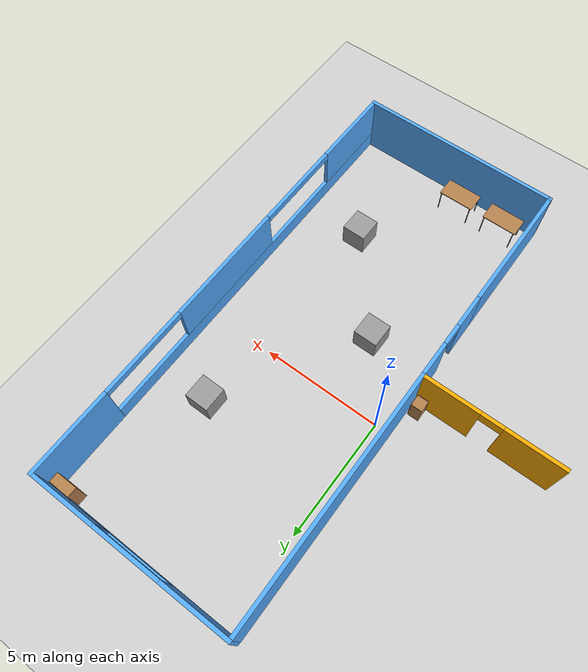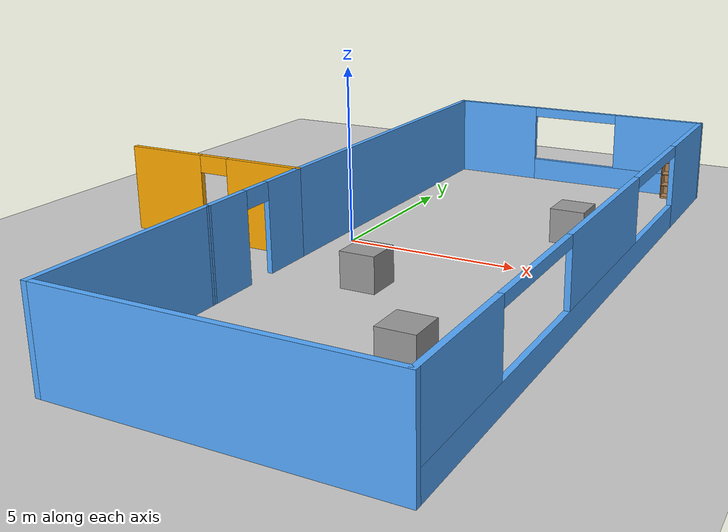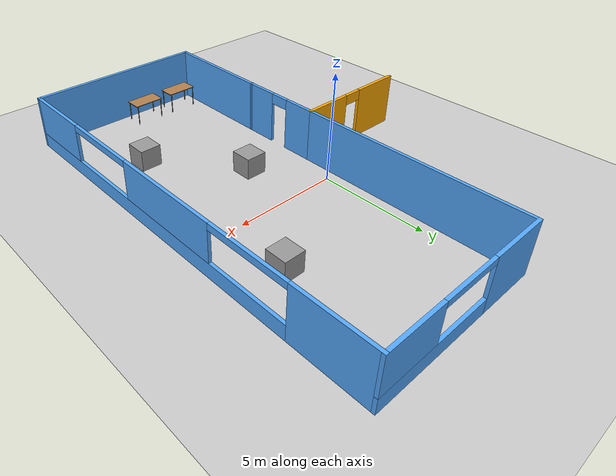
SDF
<sdf version="1.6">
 <world name="default">
  <model name="ground_plane">
   <static>1</static>
   <link name="link">
    <collision name="collision">
     <geometry><plane><normal>0 0 1</normal><size>100 100</size></plane></geometry>
     <surface><friction><ode><mu>100</mu><mu2>50</mu2></ode></friction></surface>
    </collision>
    <visual name="visual">
     <cast_shadows>0</cast_shadows>
     <geometry><plane><normal>0 0 1</normal><size>100 100</size></plane></geometry>
     <material>
      <script><uri>file://media/materials/scripts/gazebo.material</uri><name>Gazebo/Grey</name></script>
     </material>
    </visual>
   </link>
  </model>
  <model name="Building">
   <link name="Wall_10">
    <pose>2.99997 -7.175 0 0 -0 1.5708</pose>
    <visual name="Wall_10_Visual">
     <pose>0 0 1.25 0 -0 0</pose>
     <geometry><box><size>5.5 0.15 2.5</size></box></geometry>
     <material>
      <script><uri>file://media/materials/scripts/gazebo.material</uri><name>Gazebo/Grey</name></script>
      <ambient>0.333333 0.666667 1 1</ambient>
      <diffuse>0.7 0.7 0.7 1</diffuse>
      <specular>0.01 0.01 0.01 1</specular>
      <emissive>0 0 0 1</emissive>
     </material>
     <meta><layer>0</layer></meta>
    </visual>
    <collision name="Wall_10_Collision">
     <pose>0 0 1.25 0 -0 0</pose>
     <geometry><box><size>5.5 0.15 2.5</size></box></geometry>
     <surface>
      <friction>
       <ode><mu>1</mu><mu2>1</mu2><fdir1>0 0 0</fdir1><slip1>0</slip1><slip2>0</slip2></ode>
       <torsional>
        <coefficient>1</coefficient>
        <patch_radius>0</patch_radius>
        <surface_radius>0</surface_radius>
        <use_patch_radius>1</use_patch_radius>
        <ode><slip>0</slip></ode>
       </torsional>
      </friction>
      <bounce><restitution_coefficient>0</restitution_coefficient><threshold>1e+06</threshold></bounce>
      <contact>
       <collide_without_contact>0</collide_without_contact>
       <collide_without_contact_bitmask>1</collide_without_contact_bitmask>
       <collide_bitmask>1</collide_bitmask>
       <ode>
        <soft_cfm>0</soft_cfm>
        <soft_erp>0.2</soft_erp>
        <kp>1e+13</kp>
        <kd>1</kd>
        <max_vel>0.01</max_vel>
        <min_depth>0</min_depth>
       </ode>
       <bullet>
        <split_impulse>1</split_impulse>
        <split_impulse_penetration_threshold>-0.01</split_impulse_penetration_threshold>
        <soft_cfm>0</soft_cfm>
        <soft_erp>0.2</soft_erp>
        <kp>1e+13</kp>
        <kd>1</kd>
       </bullet>
      </contact>
     </surface>
    </collision>
   </link>
   <link name="Wall_53">
    <pose>0.190752 -0.639237 0 0 -0 0</pose>
    <visual name="Wall_53_Visual_0">
     <pose>-1.66349 0 1.25 0 -0 0</pose>
     <geometry><box><size>2.42302 0.15 2.5</size></box></geometry>
     <material>
      <script><uri>file://media/materials/scripts/gazebo.material</uri><name>Gazebo/Grey</name></script>
      <ambient>1 0.666667 0 1</ambient>
      <diffuse>0.7 0.7 0.7 1</diffuse>
      <specular>0.01 0.01 0.01 1</specular>
      <emissive>0 0 0 1</emissive>
     </material>
     <meta><layer>0</layer></meta>
    </visual>
    <visual name="Wall_53_Visual_1">
     <pose>1.66151 0 1.25 0 -0 0</pose>
     <geometry><box><size>2.42698 0.15 2.5</size></box></geometry>
     <material>
      <script><uri>file://media/materials/scripts/gazebo.material</uri><name>Gazebo/Grey</name></script>
      <ambient>1 0.666667 0 1</ambient>
      <diffuse>0.7 0.7 0.7 1</diffuse>
      <specular>0.01 0.01 0.01 1</specular>
      <emissive>0 0 0 1</emissive>
     </material>
     <meta><layer>0</layer></meta>
    </visual>
    <visual name="Wall_53_Visual_2">
     <pose>-0.001979 0 2.25 0 -0 0</pose>
     <geometry><box><size>0.9 0.15 0.5</size></box></geometry>
     <material>
      <script><uri>file://media/materials/scripts/gazebo.material</uri><name>Gazebo/Grey</name></script>
      <ambient>1 0.666667 0 1</ambient>
      <diffuse>0.7 0.7 0.7 1</diffuse>
      <specular>0.01 0.01 0.01 1</specular>
      <emissive>0 0 0 1</emissive>
     </material>
     <meta><layer>0</layer></meta>
    </visual>
    <collision name="Wall_53_Collision_0">
     <pose>-1.66349 0 1.25 0 -0 0</pose>
     <geometry><box><size>2.42302 0.15 2.5</size></box></geometry>
     <surface>
      <friction>
       <ode><mu>1</mu><mu2>1</mu2><fdir1>0 0 0</fdir1><slip1>0</slip1><slip2>0</slip2></ode>
       <torsional>
        <coefficient>1</coefficient>
        <patch_radius>0</patch_radius>
        <surface_radius>0</surface_radius>
        <use_patch_radius>1</use_patch_radius>
        <ode><slip>0</slip></ode>
       </torsional>
      </friction>
      <bounce><restitution_coefficient>0</restitution_coefficient><threshold>1e+06</threshold></bounce>
      <contact>
       <collide_without_contact>0</collide_without_contact>
       <collide_without_contact_bitmask>1</collide_without_contact_bitmask>
       <collide_bitmask>1</collide_bitmask>
       <ode>
        <soft_cfm>0</soft_cfm>
        <soft_erp>0.2</soft_erp>
        <kp>1e+13</kp>
        <kd>1</kd>
        <max_vel>0.01</max_vel>
        <min_depth>0</min_depth>
       </ode>
       <bullet>
        <split_impulse>1</split_impulse>
        <split_impulse_penetration_threshold>-0.01</split_impulse_penetration_threshold>
        <soft_cfm>0</soft_cfm>
        <soft_erp>0.2</soft_erp>
        <kp>1e+13</kp>
        <kd>1</kd>
       </bullet>
      </contact>
     </surface>
    </collision>
    <collision name="Wall_53_Collision_1">
     <pose>1.66151 0 1.25 0 -0 0</pose>
     <geometry><box><size>2.42698 0.15 2.5</size></box></geometry>
     <surface>
      <friction>
       <ode><mu>1</mu><mu2>1</mu2><fdir1>0 0 0</fdir1><slip1>0</slip1><slip2>0</slip2></ode>
       <torsional>
        <coefficient>1</coefficient>
        <patch_radius>0</patch_radius>
        <surface_radius>0</surface_radius>
        <use_patch_radius>1</use_patch_radius>
        <ode><slip>0</slip></ode>
       </torsional>
      </friction>
      <bounce><restitution_coefficient>0</restitution_coefficient><threshold>1e+06</threshold></bounce>
      <contact>
       <collide_without_contact>0</collide_without_contact>
       <collide_without_contact_bitmask>1</collide_without_contact_bitmask>
       <collide_bitmask>1</collide_bitmask>
       <ode>
        <soft_cfm>0</soft_cfm>
        <soft_erp>0.2</soft_erp>
        <kp>1e+13</kp>
        <kd>1</kd>
        <max_vel>0.01</max_vel>
        <min_depth>0</min_depth>
       </ode>
       <bullet>
        <split_impulse>1</split_impulse>
        <split_impulse_penetration_threshold>-0.01</split_impulse_penetration_threshold>
        <soft_cfm>0</soft_cfm>
        <soft_erp>0.2</soft_erp>
        <kp>1e+13</kp>
        <kd>1</kd>
       </bullet>
      </contact>
     </surface>
    </collision>
    <collision name="Wall_53_Collision_2">
     <pose>-0.001979 0 2.25 0 -0 0</pose>
     <geometry><box><size>0.9 0.15 0.5</size></box></geometry>
     <surface>
      <friction>
       <ode><mu>1</mu><mu2>1</mu2><fdir1>0 0 0</fdir1><slip1>0</slip1><slip2>0</slip2></ode>
       <torsional>
        <coefficient>1</coefficient>
        <patch_radius>0</patch_radius>
        <surface_radius>0</surface_radius>
        <use_patch_radius>1</use_patch_radius>
        <ode><slip>0</slip></ode>
       </torsional>
      </friction>
      <bounce><restitution_coefficient>0</restitution_coefficient><threshold>1e+06</threshold></bounce>
      <contact>
       <collide_without_contact>0</collide_without_contact>
       <collide_without_contact_bitmask>1</collide_without_contact_bitmask>
       <collide_bitmask>1</collide_bitmask>
       <ode>
        <soft_cfm>0</soft_cfm>
        <soft_erp>0.2</soft_erp>
        <kp>1e+13</kp>
        <kd>1</kd>
        <max_vel>0.01</max_vel>
        <min_depth>0</min_depth>
       </ode>
       <bullet>
        <split_impulse>1</split_impulse>
        <split_impulse_penetration_threshold>-0.01</split_impulse_penetration_threshold>
        <soft_cfm>0</soft_cfm>
        <soft_erp>0.2</soft_erp>
        <kp>1e+13</kp>
        <kd>1</kd>
       </bullet>
      </contact>
     </surface>
    </collision>
   </link>
   <link name="Wall_65">
    <pose>7.175 9.84997 0 0 0 -7e-06</pose>
    <visual name="Wall_65_Visual_0">
     <pose>-2.82562 0 1.25 0 -0 0</pose>
     <geometry><box><size>2.84883 0.15 2.5</size></box></geometry>
     <material>
      <script><uri>file://media/materials/scripts/gazebo.material</uri><name>Gazebo/Grey</name></script>
      <ambient>0.333333 0.666667 1 1</ambient>
      <diffuse>0.7 0.7 0.7 1</diffuse>
      <specular>0.01 0.01 0.01 1</specular>
      <emissive>0 0 0 1</emissive>
     </material>
     <meta><layer>0</layer></meta>
    </visual>
    <visual name="Wall_65_Visual_1">
     <pose>1.42442 0 0.35 0 -0 0</pose>
     <geometry><box><size>5.65124 0.15 0.7</size></box></geometry>
     <material>
      <script><uri>file://media/materials/scripts/gazebo.material</uri><name>Gazebo/Grey</name></script>
      <ambient>0.333333 0.666667 1 1</ambient>
      <diffuse>0.7 0.7 0.7 1</diffuse>
      <specular>0.01 0.01 0.01 1</specular>
      <emissive>0 0 0 1</emissive>
     </material>
     <meta><layer>0</layer></meta>
    </visual>
    <visual name="Wall_65_Visual_2">
     <pose>2.82442 0 1.6 0 -0 0</pose>
     <geometry><box><size>2.85124 0.15 1.8</size></box></geometry>
     <material>
      <script><uri>file://media/materials/scripts/gazebo.material</uri><name>Gazebo/Grey</name></script>
      <ambient>0.333333 0.666667 1 1</ambient>
      <diffuse>0.7 0.7 0.7 1</diffuse>
      <specular>0.01 0.01 0.01 1</specular>
      <emissive>0 0 0 1</emissive>
     </material>
     <meta><layer>0</layer></meta>
    </visual>
    <visual name="Wall_65_Visual_3">
     <pose>-0.001203 0 2.35 0 -0 0</pose>
     <geometry><box><size>2.8 0.15 0.3</size></box></geometry>
     <material>
      <script><uri>file://media/materials/scripts/gazebo.material</uri><name>Gazebo/Grey</name></script>
      <ambient>0.333333 0.666667 1 1</ambient>
      <diffuse>0.7 0.7 0.7 1</diffuse>
      <specular>0.01 0.01 0.01 1</specular>
      <emissive>0 0 0 1</emissive>
     </material>
     <meta><layer>0</layer></meta>
    </visual>
    <collision name="Wall_65_Collision_0">
     <pose>-2.82562 0 1.25 0 -0 0</pose>
     <geometry><box><size>2.84883 0.15 2.5</size></box></geometry>
     <surface>
      <friction>
       <ode><mu>1</mu><mu2>1</mu2><fdir1>0 0 0</fdir1><slip1>0</slip1><slip2>0</slip2></ode>
       <torsional>
        <coefficient>1</coefficient>
        <patch_radius>0</patch_radius>
        <surface_radius>0</surface_radius>
        <use_patch_radius>1</use_patch_radius>
        <ode><slip>0</slip></ode>
       </torsional>
      </friction>
      <bounce><restitution_coefficient>0</restitution_coefficient><threshold>1e+06</threshold></bounce>
      <contact>
       <collide_without_contact>0</collide_without_contact>
       <collide_without_contact_bitmask>1</collide_without_contact_bitmask>
       <collide_bitmask>1</collide_bitmask>
       <ode>
        <soft_cfm>0</soft_cfm>
        <soft_erp>0.2</soft_erp>
        <kp>1e+13</kp>
        <kd>1</kd>
        <max_vel>0.01</max_vel>
        <min_depth>0</min_depth>
       </ode>
       <bullet>
        <split_impulse>1</split_impulse>
        <split_impulse_penetration_threshold>-0.01</split_impulse_penetration_threshold>
        <soft_cfm>0</soft_cfm>
        <soft_erp>0.2</soft_erp>
        <kp>1e+13</kp>
        <kd>1</kd>
       </bullet>
      </contact>
     </surface>
    </collision>
    <collision name="Wall_65_Collision_1">
     <pose>1.42442 0 0.35 0 -0 0</pose>
     <geometry><box><size>5.65124 0.15 0.7</size></box></geometry>
     <surface>
      <friction>
       <ode><mu>1</mu><mu2>1</mu2><fdir1>0 0 0</fdir1><slip1>0</slip1><slip2>0</slip2></ode>
       <torsional>
        <coefficient>1</coefficient>
        <patch_radius>0</patch_radius>
        <surface_radius>0</surface_radius>
        <use_patch_radius>1</use_patch_radius>
        <ode><slip>0</slip></ode>
       </torsional>
      </friction>
      <bounce><restitution_coefficient>0</restitution_coefficient><threshold>1e+06</threshold></bounce>
      <contact>
       <collide_without_contact>0</collide_without_contact>
       <collide_without_contact_bitmask>1</collide_without_contact_bitmask>
       <collide_bitmask>1</collide_bitmask>
       <ode>
        <soft_cfm>0</soft_cfm>
        <soft_erp>0.2</soft_erp>
        <kp>1e+13</kp>
        <kd>1</kd>
        <max_vel>0.01</max_vel>
        <min_depth>0</min_depth>
       </ode>
       <bullet>
        <split_impulse>1</split_impulse>
        <split_impulse_penetration_threshold>-0.01</split_impulse_penetration_threshold>
        <soft_cfm>0</soft_cfm>
        <soft_erp>0.2</soft_erp>
        <kp>1e+13</kp>
        <kd>1</kd>
       </bullet>
      </contact>
     </surface>
    </collision>
    <collision name="Wall_65_Collision_2">
     <pose>2.82442 0 1.6 0 -0 0</pose>
     <geometry><box><size>2.85124 0.15 1.8</size></box></geometry>
     <surface>
      <friction>
       <ode><mu>1</mu><mu2>1</mu2><fdir1>0 0 0</fdir1><slip1>0</slip1><slip2>0</slip2></ode>
       <torsional>
        <coefficient>1</coefficient>
        <patch_radius>0</patch_radius>
        <surface_radius>0</surface_radius>
        <use_patch_radius>1</use_patch_radius>
        <ode><slip>0</slip></ode>
       </torsional>
      </friction>
      <bounce><restitution_coefficient>0</restitution_coefficient><threshold>1e+06</threshold></bounce>
      <contact>
       <collide_without_contact>0</collide_without_contact>
       <collide_without_contact_bitmask>1</collide_without_contact_bitmask>
       <collide_bitmask>1</collide_bitmask>
       <ode>
        <soft_cfm>0</soft_cfm>
        <soft_erp>0.2</soft_erp>
        <kp>1e+13</kp>
        <kd>1</kd>
        <max_vel>0.01</max_vel>
        <min_depth>0</min_depth>
       </ode>
       <bullet>
        <split_impulse>1</split_impulse>
        <split_impulse_penetration_threshold>-0.01</split_impulse_penetration_threshold>
        <soft_cfm>0</soft_cfm>
        <soft_erp>0.2</soft_erp>
        <kp>1e+13</kp>
        <kd>1</kd>
       </bullet>
      </contact>
     </surface>
    </collision>
    <collision name="Wall_65_Collision_3">
     <pose>-0.001203 0 2.35 0 -0 0</pose>
     <geometry><box><size>2.8 0.15 0.3</size></box></geometry>
     <surface>
      <friction>
       <ode><mu>1</mu><mu2>1</mu2><fdir1>0 0 0</fdir1><slip1>0</slip1><slip2>0</slip2></ode>
       <torsional>
        <coefficient>1</coefficient>
        <patch_radius>0</patch_radius>
        <surface_radius>0</surface_radius>
        <use_patch_radius>1</use_patch_radius>
        <ode><slip>0</slip></ode>
       </torsional>
      </friction>
      <bounce><restitution_coefficient>0</restitution_coefficient><threshold>1e+06</threshold></bounce>
      <contact>
       <collide_without_contact>0</collide_without_contact>
       <collide_without_contact_bitmask>1</collide_without_contact_bitmask>
       <collide_bitmask>1</collide_bitmask>
       <ode>
        <soft_cfm>0</soft_cfm>
        <soft_erp>0.2</soft_erp>
        <kp>1e+13</kp>
        <kd>1</kd>
        <max_vel>0.01</max_vel>
        <min_depth>0</min_depth>
       </ode>
       <bullet>
        <split_impulse>1</split_impulse>
        <split_impulse_penetration_threshold>-0.01</split_impulse_penetration_threshold>
        <soft_cfm>0</soft_cfm>
        <soft_erp>0.2</soft_erp>
        <kp>1e+13</kp>
        <kd>1</kd>
       </bullet>
      </contact>
     </surface>
    </collision>
   </link>
   <link name="Wall_73">
    <pose>2.99536 -2.56962 0 0 -0 1.57318</pose>
    <visual name="Wall_73_Visual_0">
     <pose>-1.22897 0 1.25 0 -0 0</pose>
     <geometry><box><size>1.55284 0.15 2.5</size></box></geometry>
     <material>
      <script><uri>file://media/materials/scripts/gazebo.material</uri><name>Gazebo/Grey</name></script>
      <ambient>0.333333 0.666667 1 1</ambient>
      <diffuse>0.7 0.7 0.7 1</diffuse>
      <specular>0.01 0.01 0.01 1</specular>
      <emissive>0 0 0 1</emissive>
     </material>
     <meta><layer>0</layer></meta>
    </visual>
    <visual name="Wall_73_Visual_1">
     <pose>1.22642 0 1.25 0 -0 0</pose>
     <geometry><box><size>1.55793 0.15 2.5</size></box></geometry>
     <material>
      <script><uri>file://media/materials/scripts/gazebo.material</uri><name>Gazebo/Grey</name></script>
      <ambient>0.333333 0.666667 1 1</ambient>
      <diffuse>0.7 0.7 0.7 1</diffuse>
      <specular>0.01 0.01 0.01 1</specular>
      <emissive>0 0 0 1</emissive>
     </material>
     <meta><layer>0</layer></meta>
    </visual>
    <visual name="Wall_73_Visual_2">
     <pose>-0.002543 0 2.25 0 -0 0</pose>
     <geometry><box><size>0.9 0.15 0.5</size></box></geometry>
     <material>
      <script><uri>file://media/materials/scripts/gazebo.material</uri><name>Gazebo/Grey</name></script>
      <ambient>0.333333 0.666667 1 1</ambient>
      <diffuse>0.7 0.7 0.7 1</diffuse>
      <specular>0.01 0.01 0.01 1</specular>
      <emissive>0 0 0 1</emissive>
     </material>
     <meta><layer>0</layer></meta>
    </visual>
    <collision name="Wall_73_Collision_0">
     <pose>-1.22897 0 1.25 0 -0 0</pose>
     <geometry><box><size>1.55284 0.15 2.5</size></box></geometry>
     <surface>
      <friction>
       <ode><mu>1</mu><mu2>1</mu2><fdir1>0 0 0</fdir1><slip1>0</slip1><slip2>0</slip2></ode>
       <torsional>
        <coefficient>1</coefficient>
        <patch_radius>0</patch_radius>
        <surface_radius>0</surface_radius>
        <use_patch_radius>1</use_patch_radius>
        <ode><slip>0</slip></ode>
       </torsional>
      </friction>
      <bounce><restitution_coefficient>0</restitution_coefficient><threshold>1e+06</threshold></bounce>
      <contact>
       <collide_without_contact>0</collide_without_contact>
       <collide_without_contact_bitmask>1</collide_without_contact_bitmask>
       <collide_bitmask>1</collide_bitmask>
       <ode>
        <soft_cfm>0</soft_cfm>
        <soft_erp>0.2</soft_erp>
        <kp>1e+13</kp>
        <kd>1</kd>
        <max_vel>0.01</max_vel>
        <min_depth>0</min_depth>
       </ode>
       <bullet>
        <split_impulse>1</split_impulse>
        <split_impulse_penetration_threshold>-0.01</split_impulse_penetration_threshold>
        <soft_cfm>0</soft_cfm>
        <soft_erp>0.2</soft_erp>
        <kp>1e+13</kp>
        <kd>1</kd>
       </bullet>
      </contact>
     </surface>
    </collision>
    <collision name="Wall_73_Collision_1">
     <pose>1.22642 0 1.25 0 -0 0</pose>
     <geometry><box><size>1.55793 0.15 2.5</size></box></geometry>
     <surface>
      <friction>
       <ode><mu>1</mu><mu2>1</mu2><fdir1>0 0 0</fdir1><slip1>0</slip1><slip2>0</slip2></ode>
       <torsional>
        <coefficient>1</coefficient>
        <patch_radius>0</patch_radius>
        <surface_radius>0</surface_radius>
        <use_patch_radius>1</use_patch_radius>
        <ode><slip>0</slip></ode>
       </torsional>
      </friction>
      <bounce><restitution_coefficient>0</restitution_coefficient><threshold>1e+06</threshold></bounce>
      <contact>
       <collide_without_contact>0</collide_without_contact>
       <collide_without_contact_bitmask>1</collide_without_contact_bitmask>
       <collide_bitmask>1</collide_bitmask>
       <ode>
        <soft_cfm>0</soft_cfm>
        <soft_erp>0.2</soft_erp>
        <kp>1e+13</kp>
        <kd>1</kd>
        <max_vel>0.01</max_vel>
        <min_depth>0</min_depth>
       </ode>
       <bullet>
        <split_impulse>1</split_impulse>
        <split_impulse_penetration_threshold>-0.01</split_impulse_penetration_threshold>
        <soft_cfm>0</soft_cfm>
        <soft_erp>0.2</soft_erp>
        <kp>1e+13</kp>
        <kd>1</kd>
       </bullet>
      </contact>
     </surface>
    </collision>
    <collision name="Wall_73_Collision_2">
     <pose>-0.002543 0 2.25 0 -0 0</pose>
     <geometry><box><size>0.9 0.15 0.5</size></box></geometry>
     <surface>
      <friction>
       <ode><mu>1</mu><mu2>1</mu2><fdir1>0 0 0</fdir1><slip1>0</slip1><slip2>0</slip2></ode>
       <torsional>
        <coefficient>1</coefficient>
        <patch_radius>0</patch_radius>
        <surface_radius>0</surface_radius>
        <use_patch_radius>1</use_patch_radius>
        <ode><slip>0</slip></ode>
       </torsional>
      </friction>
      <bounce><restitution_coefficient>0</restitution_coefficient><threshold>1e+06</threshold></bounce>
      <contact>
       <collide_without_contact>0</collide_without_contact>
       <collide_without_contact_bitmask>1</collide_without_contact_bitmask>
       <collide_bitmask>1</collide_bitmask>
       <ode>
        <soft_cfm>0</soft_cfm>
        <soft_erp>0.2</soft_erp>
        <kp>1e+13</kp>
        <kd>1</kd>
        <max_vel>0.01</max_vel>
        <min_depth>0</min_depth>
       </ode>
       <bullet>
        <split_impulse>1</split_impulse>
        <split_impulse_penetration_threshold>-0.01</split_impulse_penetration_threshold>
        <soft_cfm>0</soft_cfm>
        <soft_erp>0.2</soft_erp>
        <kp>1e+13</kp>
        <kd>1</kd>
       </bullet>
      </contact>
     </surface>
    </collision>
   </link>
   <link name="Wall_74">
    <pose>2.99075 4.53576 0 0 -0 1.5708</pose>
    <visual name="Wall_74_Visual">
     <pose>0 0 1.25 0 -0 0</pose>
     <geometry><box><size>10.5 0.15 2.5</size></box></geometry>
     <material>
      <script><uri>file://media/materials/scripts/gazebo.material</uri><name>Gazebo/Grey</name></script>
      <ambient>0.333333 0.666667 1 1</ambient>
      <diffuse>0.7 0.7 0.7 1</diffuse>
      <specular>0.01 0.01 0.01 1</specular>
      <emissive>0 0 0 1</emissive>
     </material>
     <meta><layer>0</layer></meta>
    </visual>
    <collision name="Wall_74_Collision">
     <pose>0 0 1.25 0 -0 0</pose>
     <geometry><box><size>10.5 0.15 2.5</size></box></geometry>
     <surface>
      <friction>
       <ode><mu>1</mu><mu2>1</mu2><fdir1>0 0 0</fdir1><slip1>0</slip1><slip2>0</slip2></ode>
       <torsional>
        <coefficient>1</coefficient>
        <patch_radius>0</patch_radius>
        <surface_radius>0</surface_radius>
        <use_patch_radius>1</use_patch_radius>
        <ode><slip>0</slip></ode>
       </torsional>
      </friction>
      <bounce><restitution_coefficient>0</restitution_coefficient><threshold>1e+06</threshold></bounce>
      <contact>
       <collide_without_contact>0</collide_without_contact>
       <collide_without_contact_bitmask>1</collide_without_contact_bitmask>
       <collide_bitmask>1</collide_bitmask>
       <ode>
        <soft_cfm>0</soft_cfm>
        <soft_erp>0.2</soft_erp>
        <kp>1e+13</kp>
        <kd>1</kd>
        <max_vel>0.01</max_vel>
        <min_depth>0</min_depth>
       </ode>
       <bullet>
        <split_impulse>1</split_impulse>
        <split_impulse_penetration_threshold>-0.01</split_impulse_penetration_threshold>
        <soft_cfm>0</soft_cfm>
        <soft_erp>0.2</soft_erp>
        <kp>1e+13</kp>
        <kd>1</kd>
       </bullet>
      </contact>
     </surface>
    </collision>
   </link>
   <link name="Wall_8">
    <pose>11.35 -2.9e-05 0 0 0 -1.5708</pose>
    <visual name="Wall_8_Visual_0">
     <pose>-8.14396 0 1.25 0 -0 0</pose>
     <geometry><box><size>3.56122 0.15 2.5</size></box></geometry>
     <material>
      <script><uri>file://media/materials/scripts/gazebo.material</uri><name>Gazebo/Grey</name></script>
      <ambient>0.333333 0.666667 1 1</ambient>
      <diffuse>0.7 0.7 0.7 1</diffuse>
      <specular>0.01 0.01 0.01 1</specular>
      <emissive>0 0 0 1</emissive>
     </material>
     <meta><layer>0</layer></meta>
    </visual>
    <visual name="Wall_8_Visual_1">
     <pose>1.78061 0 0.35 0 -0 0</pose>
     <geometry><box><size>16.2879 0.15 0.7</size></box></geometry>
     <material>
      <script><uri>file://media/materials/scripts/gazebo.material</uri><name>Gazebo/Grey</name></script>
      <ambient>0.333333 0.666667 1 1</ambient>
      <diffuse>0.7 0.7 0.7 1</diffuse>
      <specular>0.01 0.01 0.01 1</specular>
      <emissive>0 0 0 1</emissive>
     </material>
     <meta><layer>0</layer></meta>
    </visual>
    <visual name="Wall_8_Visual_2">
     <pose>0.025243 0 1.6 0 -0 0</pose>
     <geometry><box><size>5.1772 0.15 1.8</size></box></geometry>
     <material>
      <script><uri>file://media/materials/scripts/gazebo.material</uri><name>Gazebo/Grey</name></script>
      <ambient>0.333333 0.666667 1 1</ambient>
      <diffuse>0.7 0.7 0.7 1</diffuse>
      <specular>0.01 0.01 0.01 1</specular>
      <emissive>0 0 0 1</emissive>
     </material>
     <meta><layer>0</layer></meta>
    </visual>
    <visual name="Wall_8_Visual_3">
     <pose>8.16921 0 1.6 0 -0 0</pose>
     <geometry><box><size>3.51073 0.15 1.8</size></box></geometry>
     <material>
      <script><uri>file://media/materials/scripts/gazebo.material</uri><name>Gazebo/Grey</name></script>
      <ambient>0.333333 0.666667 1 1</ambient>
      <diffuse>0.7 0.7 0.7 1</diffuse>
      <specular>0.01 0.01 0.01 1</specular>
      <emissive>0 0 0 1</emissive>
     </material>
     <meta><layer>0</layer></meta>
    </visual>
    <visual name="Wall_8_Visual_4">
     <pose>-4.46335 0 2.35 0 -0 0</pose>
     <geometry><box><size>3.8 0.15 0.3</size></box></geometry>
     <material>
      <script><uri>file://media/materials/scripts/gazebo.material</uri><name>Gazebo/Grey</name></script>
      <ambient>0.333333 0.666667 1 1</ambient>
      <diffuse>0.7 0.7 0.7 1</diffuse>
      <specular>0.01 0.01 0.01 1</specular>
      <emissive>0 0 0 1</emissive>
     </material>
     <meta><layer>0</layer></meta>
    </visual>
    <visual name="Wall_8_Visual_5">
     <pose>4.51384 0 2.35 0 -0 0</pose>
     <geometry><box><size>3.8 0.15 0.3</size></box></geometry>
     <material>
      <script><uri>file://media/materials/scripts/gazebo.material</uri><name>Gazebo/Grey</name></script>
      <ambient>0.333333 0.666667 1 1</ambient>
      <diffuse>0.7 0.7 0.7 1</diffuse>
      <specular>0.01 0.01 0.01 1</specular>
      <emissive>0 0 0 1</emissive>
     </material>
     <meta><layer>0</layer></meta>
    </visual>
    <collision name="Wall_8_Collision_0">
     <pose>-8.14396 0 1.25 0 -0 0</pose>
     <geometry><box><size>3.56122 0.15 2.5</size></box></geometry>
     <surface>
      <friction>
       <ode><mu>1</mu><mu2>1</mu2><fdir1>0 0 0</fdir1><slip1>0</slip1><slip2>0</slip2></ode>
       <torsional>
        <coefficient>1</coefficient>
        <patch_radius>0</patch_radius>
        <surface_radius>0</surface_radius>
        <use_patch_radius>1</use_patch_radius>
        <ode><slip>0</slip></ode>
       </torsional>
      </friction>
      <bounce><restitution_coefficient>0</restitution_coefficient><threshold>1e+06</threshold></bounce>
      <contact>
       <collide_without_contact>0</collide_without_contact>
       <collide_without_contact_bitmask>1</collide_without_contact_bitmask>
       <collide_bitmask>1</collide_bitmask>
       <ode>
        <soft_cfm>0</soft_cfm>
        <soft_erp>0.2</soft_erp>
        <kp>1e+13</kp>
        <kd>1</kd>
        <max_vel>0.01</max_vel>
        <min_depth>0</min_depth>
       </ode>
       <bullet>
        <split_impulse>1</split_impulse>
        <split_impulse_penetration_threshold>-0.01</split_impulse_penetration_threshold>
        <soft_cfm>0</soft_cfm>
        <soft_erp>0.2</soft_erp>
        <kp>1e+13</kp>
        <kd>1</kd>
       </bullet>
      </contact>
     </surface>
    </collision>
    <collision name="Wall_8_Collision_1">
     <pose>1.78061 0 0.35 0 -0 0</pose>
     <geometry><box><size>16.2879 0.15 0.7</size></box></geometry>
     <surface>
      <friction>
       <ode><mu>1</mu><mu2>1</mu2><fdir1>0 0 0</fdir1><slip1>0</slip1><slip2>0</slip2></ode>
       <torsional>
        <coefficient>1</coefficient>
        <patch_radius>0</patch_radius>
        <surface_radius>0</surface_radius>
        <use_patch_radius>1</use_patch_radius>
        <ode><slip>0</slip></ode>
       </torsional>
      </friction>
      <bounce><restitution_coefficient>0</restitution_coefficient><threshold>1e+06</threshold></bounce>
      <contact>
       <collide_without_contact>0</collide_without_contact>
       <collide_without_contact_bitmask>1</collide_without_contact_bitmask>
       <collide_bitmask>1</collide_bitmask>
       <ode>
        <soft_cfm>0</soft_cfm>
        <soft_erp>0.2</soft_erp>
        <kp>1e+13</kp>
        <kd>1</kd>
        <max_vel>0.01</max_vel>
        <min_depth>0</min_depth>
       </ode>
       <bullet>
        <split_impulse>1</split_impulse>
        <split_impulse_penetration_threshold>-0.01</split_impulse_penetration_threshold>
        <soft_cfm>0</soft_cfm>
        <soft_erp>0.2</soft_erp>
        <kp>1e+13</kp>
        <kd>1</kd>
       </bullet>
      </contact>
     </surface>
    </collision>
    <collision name="Wall_8_Collision_5">
     <pose>4.51384 0 2.35 0 -0 0</pose>
     <geometry><box><size>3.8 0.15 0.3</size></box></geometry>
     <surface>
      <friction>
       <ode><mu>1</mu><mu2>1</mu2><fdir1>0 0 0</fdir1><slip1>0</slip1><slip2>0</slip2></ode>
       <torsional>
        <coefficient>1</coefficient>
        <patch_radius>0</patch_radius>
        <surface_radius>0</surface_radius>
        <use_patch_radius>1</use_patch_radius>
        <ode><slip>0</slip></ode>
       </torsional>
      </friction>
      <bounce><restitution_coefficient>0</restitution_coefficient><threshold>1e+06</threshold></bounce>
      <contact>
       <collide_without_contact>0</collide_without_contact>
       <collide_without_contact_bitmask>1</collide_without_contact_bitmask>
       <collide_bitmask>1</collide_bitmask>
       <ode>
        <soft_cfm>0</soft_cfm>
        <soft_erp>0.2</soft_erp>
        <kp>1e+13</kp>
        <kd>1</kd>
        <max_vel>0.01</max_vel>
        <min_depth>0</min_depth>
       </ode>
       <bullet>
        <split_impulse>1</split_impulse>
        <split_impulse_penetration_threshold>-0.01</split_impulse_penetration_threshold>
        <soft_cfm>0</soft_cfm>
        <soft_erp>0.2</soft_erp>
        <kp>1e+13</kp>
        <kd>1</kd>
       </bullet>
      </contact>
     </surface>
    </collision>
    <collision name="Wall_8_Collision_2">
     <pose>0.025243 0 1.6 0 -0 0</pose>
     <geometry><box><size>5.1772 0.15 1.8</size></box></geometry>
     <surface>
      <friction>
       <ode><mu>1</mu><mu2>1</mu2><fdir1>0 0 0</fdir1><slip1>0</slip1><slip2>0</slip2></ode>
       <torsional>
        <coefficient>1</coefficient>
        <patch_radius>0</patch_radius>
        <surface_radius>0</surface_radius>
        <use_patch_radius>1</use_patch_radius>
        <ode><slip>0</slip></ode>
       </torsional>
      </friction>
      <bounce><restitution_coefficient>0</restitution_coefficient><threshold>1e+06</threshold></bounce>
      <contact>
       <collide_without_contact>0</collide_without_contact>
       <collide_without_contact_bitmask>1</collide_without_contact_bitmask>
       <collide_bitmask>1</collide_bitmask>
       <ode>
        <soft_cfm>0</soft_cfm>
        <soft_erp>0.2</soft_erp>
        <kp>1e+13</kp>
        <kd>1</kd>
        <max_vel>0.01</max_vel>
        <min_depth>0</min_depth>
       </ode>
       <bullet>
        <split_impulse>1</split_impulse>
        <split_impulse_penetration_threshold>-0.01</split_impulse_penetration_threshold>
        <soft_cfm>0</soft_cfm>
        <soft_erp>0.2</soft_erp>
        <kp>1e+13</kp>
        <kd>1</kd>
       </bullet>
      </contact>
     </surface>
    </collision>
    <collision name="Wall_8_Collision_3">
     <pose>8.16921 0 1.6 0 -0 0</pose>
     <geometry><box><size>3.51073 0.15 1.8</size></box></geometry>
     <surface>
      <friction>
       <ode><mu>1</mu><mu2>1</mu2><fdir1>0 0 0</fdir1><slip1>0</slip1><slip2>0</slip2></ode>
       <torsional>
        <coefficient>1</coefficient>
        <patch_radius>0</patch_radius>
        <surface_radius>0</surface_radius>
        <use_patch_radius>1</use_patch_radius>
        <ode><slip>0</slip></ode>
       </torsional>
      </friction>
      <bounce><restitution_coefficient>0</restitution_coefficient><threshold>1e+06</threshold></bounce>
      <contact>
       <collide_without_contact>0</collide_without_contact>
       <collide_without_contact_bitmask>1</collide_without_contact_bitmask>
       <collide_bitmask>1</collide_bitmask>
       <ode>
        <soft_cfm>0</soft_cfm>
        <soft_erp>0.2</soft_erp>
        <kp>1e+13</kp>
        <kd>1</kd>
        <max_vel>0.01</max_vel>
        <min_depth>0</min_depth>
       </ode>
       <bullet>
        <split_impulse>1</split_impulse>
        <split_impulse_penetration_threshold>-0.01</split_impulse_penetration_threshold>
        <soft_cfm>0</soft_cfm>
        <soft_erp>0.2</soft_erp>
        <kp>1e+13</kp>
        <kd>1</kd>
       </bullet>
      </contact>
     </surface>
    </collision>
    <collision name="Wall_8_Collision_4">
     <pose>-4.46335 0 2.35 0 -0 0</pose>
     <geometry><box><size>3.8 0.15 0.3</size></box></geometry>
     <surface>
      <friction>
       <ode><mu>1</mu><mu2>1</mu2><fdir1>0 0 0</fdir1><slip1>0</slip1><slip2>0</slip2></ode>
       <torsional>
        <coefficient>1</coefficient>
        <patch_radius>0</patch_radius>
        <surface_radius>0</surface_radius>
        <use_patch_radius>1</use_patch_radius>
        <ode><slip>0</slip></ode>
       </torsional>
      </friction>
      <bounce><restitution_coefficient>0</restitution_coefficient><threshold>1e+06</threshold></bounce>
      <contact>
       <collide_without_contact>0</collide_without_contact>
       <collide_without_contact_bitmask>1</collide_without_contact_bitmask>
       <collide_bitmask>1</collide_bitmask>
       <ode>
        <soft_cfm>0</soft_cfm>
        <soft_erp>0.2</soft_erp>
        <kp>1e+13</kp>
        <kd>1</kd>
        <max_vel>0.01</max_vel>
        <min_depth>0</min_depth>
       </ode>
       <bullet>
        <split_impulse>1</split_impulse>
        <split_impulse_penetration_threshold>-0.01</split_impulse_penetration_threshold>
        <soft_cfm>0</soft_cfm>
        <soft_erp>0.2</soft_erp>
        <kp>1e+13</kp>
        <kd>1</kd>
       </bullet>
      </contact>
     </surface>
    </collision>
   </link>
   <link name="Wall_9">
    <pose>7.17497 -9.85 0 0 -0 3.14159</pose>
    <visual name="Wall_9_Visual">
     <pose>0 0 1.25 0 -0 0</pose>
     <geometry><box><size>8.5 0.15 2.5</size></box></geometry>
     <material>
      <script><uri>file://media/materials/scripts/gazebo.material</uri><name>Gazebo/Grey</name></script>
      <ambient>0.333333 0.666667 1 1</ambient>
      <diffuse>0.7 0.7 0.7 1</diffuse>
      <specular>0.01 0.01 0.01 1</specular>
      <emissive>0 0 0 1</emissive>
     </material>
     <meta><layer>0</layer></meta>
    </visual>
    <collision name="Wall_9_Collision">
     <pose>0 0 1.25 0 -0 0</pose>
     <geometry><box><size>8.5 0.15 2.5</size></box></geometry>
     <surface>
      <friction>
       <ode><mu>1</mu><mu2>1</mu2><fdir1>0 0 0</fdir1><slip1>0</slip1><slip2>0</slip2></ode>
       <torsional>
        <coefficient>1</coefficient>
        <patch_radius>0</patch_radius>
        <surface_radius>0</surface_radius>
        <use_patch_radius>1</use_patch_radius>
        <ode><slip>0</slip></ode>
       </torsional>
      </friction>
      <bounce><restitution_coefficient>0</restitution_coefficient><threshold>1e+06</threshold></bounce>
      <contact>
       <collide_without_contact>0</collide_without_contact>
       <collide_without_contact_bitmask>1</collide_without_contact_bitmask>
       <collide_bitmask>1</collide_bitmask>
       <ode>
        <soft_cfm>0</soft_cfm>
        <soft_erp>0.2</soft_erp>
        <kp>1e+13</kp>
        <kd>1</kd>
        <max_vel>0.01</max_vel>
        <min_depth>0</min_depth>
       </ode>
       <bullet>
        <split_impulse>1</split_impulse>
        <split_impulse_penetration_threshold>-0.01</split_impulse_penetration_threshold>
        <soft_cfm>0</soft_cfm>
        <soft_erp>0.2</soft_erp>
        <kp>1e+13</kp>
        <kd>1</kd>
       </bullet>
      </contact>
     </surface>
    </collision>
   </link>
   <static>1</static>
   <pose>-3.57737 -1.07989 0 0 -0 0</pose>
  </model>
  <model name="cabinet">
   <static>1</static>
   <link name="cabinet_bottom_plate">
    <inertial>
     <pose>0 0 -1 0 -0 0</pose>
     <inertia><ixx>2.05</ixx><ixy>0</ixy><ixz>0</ixz><iyy>2.05</iyy><iyz>0</iyz><izz>2.05</izz></inertia>
     <mass>25</mass>
    </inertial>
    <collision name="cabinet_bottom_plate_geom">
     <pose>0 0 0.01 0 -0 0</pose>
     <geometry><box><size>0.45 0.45 0.02</size></box></geometry>
    </collision>
    <visual name="cabinet_bottom_plate_geom_visual">
     <pose>0 0 0.01 0 -0 0</pose>
     <geometry><box><size>0.45 0.45 0.02</size></box></geometry>
     <material>
      <script><uri>file://media/materials/scripts/gazebo.material</uri><name>Gazebo/Wood</name></script>
     </material>
    </visual>
    <collision name="cabinet_bottom_plate_geom_cabinet_back_plate">
     <pose>0.235 0 0.51 0 -0 0</pose>
     <geometry><box><size>0.02 0.45 1.02</size></box></geometry>
    </collision>
    <visual name="cabinet_bottom_plate_geom_cabinet_back_plate_visual">
     <pose>0.235 0 0.51 0 -0 0</pose>
     <geometry><box><size>0.02 0.45 1.02</size></box></geometry>
     <material>
      <script><uri>file://media/materials/scripts/gazebo.material</uri><name>Gazebo/Wood</name></script>
     </material>
    </visual>
    <collision name="cabinet_bottom_plate_geom_cabinet_left_plate">
     <pose>0 0.235 0.51 0 -0 0</pose>
     <geometry><box><size>0.45 0.02 1.02</size></box></geometry>
    </collision>
    <visual name="cabinet_bottom_plate_geom_cabinet_left_plate_visual">
     <pose>0 0.235 0.51 0 -0 0</pose>
     <geometry><box><size>0.45 0.02 1.02</size></box></geometry>
     <material>
      <script><uri>file://media/materials/scripts/gazebo.material</uri><name>Gazebo/Wood</name></script>
     </material>
    </visual>
    <collision name="cabinet_bottom_plate_geom_cabinet_middle_plate">
     <pose>0 0 0.51 0 -0 0</pose>
     <geometry><box><size>0.45 0.45 0.02</size></box></geometry>
    </collision>
    <visual name="cabinet_bottom_plate_geom_cabinet_middle_plate_visual">
     <pose>0 0 0.51 0 -0 0</pose>
     <geometry><box><size>0.45 0.45 0.02</size></box></geometry>
     <material>
      <script><uri>file://media/materials/scripts/gazebo.material</uri><name>Gazebo/Wood</name></script>
     </material>
    </visual>
    <collision name="cabinet_bottom_plate_geom_cabinet_right_plate">
     <pose>0 -0.235 0.51 0 -0 0</pose>
     <geometry><box><size>0.45 0.02 1.02</size></box></geometry>
    </collision>
    <visual name="cabinet_bottom_plate_geom_cabinet_right_plate_visual">
     <pose>0 -0.235 0.51 0 -0 0</pose>
     <geometry><box><size>0.45 0.02 1.02</size></box></geometry>
     <material>
      <script><uri>file://media/materials/scripts/gazebo.material</uri><name>Gazebo/Wood</name></script>
     </material>
    </visual>
    <collision name="cabinet_bottom_plate_geom_cabinet_top_plate">
     <pose>0 0 1.01 0 -0 0</pose>
     <geometry><box><size>0.45 0.45 0.02</size></box></geometry>
    </collision>
    <visual name="cabinet_bottom_plate_geom_cabinet_top_plate_visual">
     <pose>0 0 1.01 0 -0 0</pose>
     <geometry><box><size>0.45 0.45 0.02</size></box></geometry>
     <material>
      <script><uri>file://media/materials/scripts/gazebo.material</uri><name>Gazebo/Wood</name></script>
     </material>
    </visual>
   </link>
   <pose>-0.958254 -1.33951 0 0 -0 0</pose>
  </model>
  <model name="bookshelf">
   <static>1</static>
   <link name="link">
    <inertial><mass>1</mass></inertial>
    <collision name="back">
     <pose>0 0.005 0.6 0 -0 0</pose>
     <geometry><box><size>0.9 0.01 1.2</size></box></geometry>
    </collision>
    <visual name="visual1">
     <pose>0 0.005 0.6 0 -0 0</pose>
     <geometry><box><size>0.9 0.01 1.2</size></box></geometry>
     <material>
      <script><uri>file://media/materials/scripts/gazebo.material</uri><name>Gazebo/Wood</name></script>
     </material>
    </visual>
    <collision name="left_side">
     <pose>0.45 -0.195 0.6 0 -0 0</pose>
     <geometry><box><size>0.02 0.4 1.2</size></box></geometry>
    </collision>
    <visual name="visual2">
     <pose>0.45 -0.195 0.6 0 -0 0</pose>
     <geometry><box><size>0.02 0.4 1.2</size></box></geometry>
     <material>
      <script><uri>file://media/materials/scripts/gazebo.material</uri><name>Gazebo/Wood</name></script>
     </material>
    </visual>
    <collision name="right_side">
     <pose>-0.45 -0.195 0.6 0 -0 0</pose>
     <geometry><box><size>0.02 0.4 1.2</size></box></geometry>
    </collision>
    <visual name="visual3">
     <pose>-0.45 -0.195 0.6 0 -0 0</pose>
     <geometry><box><size>0.02 0.4 1.2</size></box></geometry>
     <material>
      <script><uri>file://media/materials/scripts/gazebo.material</uri><name>Gazebo/Wood</name></script>
     </material>
    </visual>
    <collision name="bottom">
     <pose>0 -0.195 0.03 0 -0 0</pose>
     <geometry><box><size>0.88 0.4 0.06</size></box></geometry>
    </collision>
    <visual name="visual4">
     <pose>0 -0.195 0.03 0 -0 0</pose>
     <geometry><box><size>0.88 0.4 0.06</size></box></geometry>
     <material>
      <script><uri>file://media/materials/scripts/gazebo.material</uri><name>Gazebo/Wood</name></script>
     </material>
    </visual>
    <collision name="top">
     <pose>0 -0.195 1.19 0 -0 0</pose>
     <geometry><box><size>0.88 0.4 0.02</size></box></geometry>
    </collision>
    <visual name="visual5">
     <pose>0 -0.195 1.19 0 -0 0</pose>
     <geometry><box><size>0.88 0.4 0.02</size></box></geometry>
     <material>
      <script><uri>file://media/materials/scripts/gazebo.material</uri><name>Gazebo/Wood</name></script>
     </material>
    </visual>
    <collision name="low_shelf">
     <pose>0 -0.195 0.43 0 -0 0</pose>
     <geometry><box><size>0.88 0.4 0.02</size></box></geometry>
    </collision>
    <visual name="visual6">
     <pose>0 -0.195 0.43 0 -0 0</pose>
     <geometry><box><size>0.88 0.4 0.02</size></box></geometry>
     <material>
      <script><uri>file://media/materials/scripts/gazebo.material</uri><name>Gazebo/Wood</name></script>
     </material>
    </visual>
    <collision name="high_shelf">
     <pose>0 -0.195 0.8 0 -0 0</pose>
     <geometry><box><size>0.88 0.4 0.02</size></box></geometry>
    </collision>
    <visual name="visual7">
     <pose>0 -0.195 0.8 0 -0 0</pose>
     <geometry><box><size>0.88 0.4 0.02</size></box></geometry>
     <material>
      <script><uri>file://media/materials/scripts/gazebo.material</uri><name>Gazebo/Wood</name></script>
     </material>
    </visual>
   </link>
   <pose>7.2199 8.65339 0 0 -0 0</pose>
  </model>
  <model name="table_0">
   <static>1</static>
   <link name="link">
    <collision name="surface">
     <pose>0 0 1 0 -0 0</pose>
     <geometry><box><size>1.5 0.8 0.03</size></box></geometry>
     <surface><friction><ode><mu>0.6</mu><mu2>0.6</mu2></ode></friction></surface>
    </collision>
    <visual name="visual1">
     <pose>0 0 1 0 -0 0</pose>
     <geometry><box><size>1.5 0.8 0.03</size></box></geometry>
     <material>
      <script><uri>file://media/materials/scripts/gazebo.material</uri><name>Gazebo/Wood</name></script>
     </material>
    </visual>
    <collision name="front_left_leg">
     <pose>0.68 0.38 0.5 0 -0 0</pose>
     <geometry><cylinder><radius>0.02</radius><length>1</length></cylinder></geometry>
    </collision>
    <visual name="front_left_leg">
     <pose>0.68 0.38 0.5 0 -0 0</pose>
     <geometry><cylinder><radius>0.02</radius><length>1</length></cylinder></geometry>
     <material>
      <script><uri>file://media/materials/scripts/gazebo.material</uri><name>Gazebo/Grey</name></script>
     </material>
    </visual>
    <collision name="front_right_leg">
     <pose>0.68 -0.38 0.5 0 -0 0</pose>
     <geometry><cylinder><radius>0.02</radius><length>1</length></cylinder></geometry>
    </collision>
    <visual name="front_right_leg">
     <pose>0.68 -0.38 0.5 0 -0 0</pose>
     <geometry><cylinder><radius>0.02</radius><length>1</length></cylinder></geometry>
     <material>
      <script><uri>file://media/materials/scripts/gazebo.material</uri><name>Gazebo/Grey</name></script>
     </material>
    </visual>
    <collision name="back_right_leg">
     <pose>-0.68 -0.38 0.5 0 -0 0</pose>
     <geometry><cylinder><radius>0.02</radius><length>1</length></cylinder></geometry>
    </collision>
    <visual name="back_right_leg">
     <pose>-0.68 -0.38 0.5 0 -0 0</pose>
     <geometry><cylinder><radius>0.02</radius><length>1</length></cylinder></geometry>
     <material>
      <script><uri>file://media/materials/scripts/gazebo.material</uri><name>Gazebo/Grey</name></script>
     </material>
    </visual>
    <collision name="back_left_leg">
     <pose>-0.68 0.38 0.5 0 -0 0</pose>
     <geometry><cylinder><radius>0.02</radius><length>1</length></cylinder></geometry>
    </collision>
    <visual name="back_left_leg">
     <pose>-0.68 0.38 0.5 0 -0 0</pose>
     <geometry><cylinder><radius>0.02</radius><length>1</length></cylinder></geometry>
     <material>
      <script><uri>file://media/materials/scripts/gazebo.material</uri><name>Gazebo/Grey</name></script>
     </material>
    </visual>
   </link>
   <pose>0.641362 -10.1384 0 0 -0 0</pose>
  </model>
  <model name="table_1">
   <static>1</static>
   <link name="link">
    <collision name="surface">
     <pose>0 0 1 0 -0 0</pose>
     <geometry><box><size>1.5 0.8 0.03</size></box></geometry>
     <surface><friction><ode><mu>0.6</mu><mu2>0.6</mu2></ode></friction></surface>
    </collision>
    <visual name="visual1">
     <pose>0 0 1 0 -0 0</pose>
     <geometry><box><size>1.5 0.8 0.03</size></box></geometry>
     <material>
      <script><uri>file://media/materials/scripts/gazebo.material</uri><name>Gazebo/Wood</name></script>
     </material>
    </visual>
    <collision name="front_left_leg">
     <pose>0.68 0.38 0.5 0 -0 0</pose>
     <geometry><cylinder><radius>0.02</radius><length>1</length></cylinder></geometry>
    </collision>
    <visual name="front_left_leg">
     <pose>0.68 0.38 0.5 0 -0 0</pose>
     <geometry><cylinder><radius>0.02</radius><length>1</length></cylinder></geometry>
     <material>
      <script><uri>file://media/materials/scripts/gazebo.material</uri><name>Gazebo/Grey</name></script>
     </material>
    </visual>
    <collision name="front_right_leg">
     <pose>0.68 -0.38 0.5 0 -0 0</pose>
     <geometry><cylinder><radius>0.02</radius><length>1</length></cylinder></geometry>
    </collision>
    <visual name="front_right_leg">
     <pose>0.68 -0.38 0.5 0 -0 0</pose>
     <geometry><cylinder><radius>0.02</radius><length>1</length></cylinder></geometry>
     <material>
      <script><uri>file://media/materials/scripts/gazebo.material</uri><name>Gazebo/Grey</name></script>
     </material>
    </visual>
    <collision name="back_right_leg">
     <pose>-0.68 -0.38 0.5 0 -0 0</pose>
     <geometry><cylinder><radius>0.02</radius><length>1</length></cylinder></geometry>
    </collision>
    <visual name="back_right_leg">
     <pose>-0.68 -0.38 0.5 0 -0 0</pose>
     <geometry><cylinder><radius>0.02</radius><length>1</length></cylinder></geometry>
     <material>
      <script><uri>file://media/materials/scripts/gazebo.material</uri><name>Gazebo/Grey</name></script>
     </material>
    </visual>
    <collision name="back_left_leg">
     <pose>-0.68 0.38 0.5 0 -0 0</pose>
     <geometry><cylinder><radius>0.02</radius><length>1</length></cylinder></geometry>
    </collision>
    <visual name="back_left_leg">
     <pose>-0.68 0.38 0.5 0 -0 0</pose>
     <geometry><cylinder><radius>0.02</radius><length>1</length></cylinder></geometry>
     <material>
      <script><uri>file://media/materials/scripts/gazebo.material</uri><name>Gazebo/Grey</name></script>
     </material>
    </visual>
   </link>
   <pose>2.69883 -10.1339 0 0 -0 0</pose>
  </model>
  <model name="unit_box">
   <pose>5.57972 2.9741 0.499995 0 1e-05 0</pose>
   <link name="link">
    <inertial>
     <mass>1</mass>
     <inertia>
      <ixx>0.166667</ixx>
      <ixy>0</ixy>
      <ixz>0</ixz>
      <iyy>0.166667</iyy>
      <iyz>0</iyz>
      <izz>0.166667</izz>
     </inertia>
    </inertial>
    <collision name="collision"><geometry><box><size>1 1 1</size></box></geometry></collision>
    <visual name="visual">
     <geometry><box><size>1 1 1</size></box></geometry>
     <material>
      <script><name>Gazebo/Grey</name><uri>file://media/materials/scripts/gazebo.material</uri></script>
     </material>
    </visual>
   </link>
  </model>
  <model name="unit_box_0">
   <pose>2.12738 -2.78552 0.499995 -1e-05 0 0</pose>
   <link name="link">
    <inertial>
     <mass>1</mass>
     <inertia>
      <ixx>0.166667</ixx>
      <ixy>0</ixy>
      <ixz>0</ixz>
      <iyy>0.166667</iyy>
      <iyz>0</iyz>
      <izz>0.166667</izz>
     </inertia>
    </inertial>
    <collision name="collision"><geometry><box><size>1 1 1</size></box></geometry></collision>
    <visual name="visual">
     <geometry><box><size>1 1 1</size></box></geometry>
     <material>
      <script><name>Gazebo/Grey</name><uri>file://media/materials/scripts/gazebo.material</uri></script>
     </material>
    </visual>
   </link>
  </model>
  <model name="unit_box_1">
   <pose>5.20934 -6.41676 0.5 0 -0 0</pose>
   <link name="link">
    <inertial>
     <mass>1</mass>
     <inertia>
      <ixx>0.166667</ixx>
      <ixy>0</ixy>
      <ixz>0</ixz>
      <iyy>0.166667</iyy>
      <iyz>0</iyz>
      <izz>0.166667</izz>
     </inertia>
    </inertial>
    <collision name="collision"><geometry><box><size>1 1 1</size></box></geometry></collision>
    <visual name="visual">
     <geometry><box><size>1 1 1</size></box></geometry>
     <material>
      <script><name>Gazebo/Grey</name><uri>file://media/materials/scripts/gazebo.material</uri></script>
     </material>
    </visual>
   </link>
  </model>
 </world>
</sdf>
